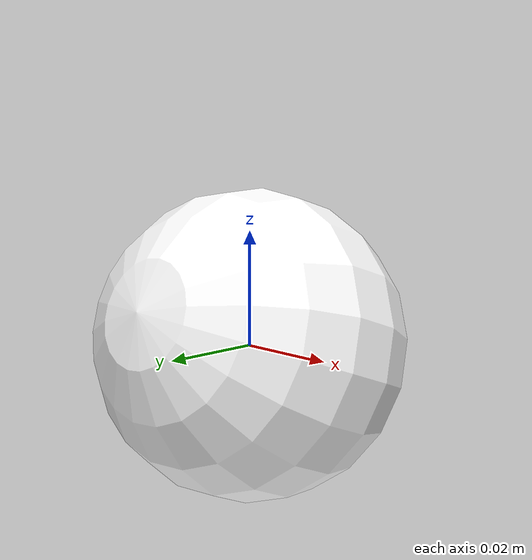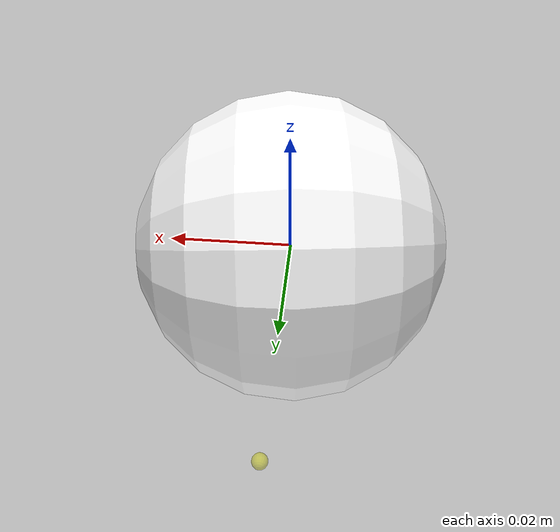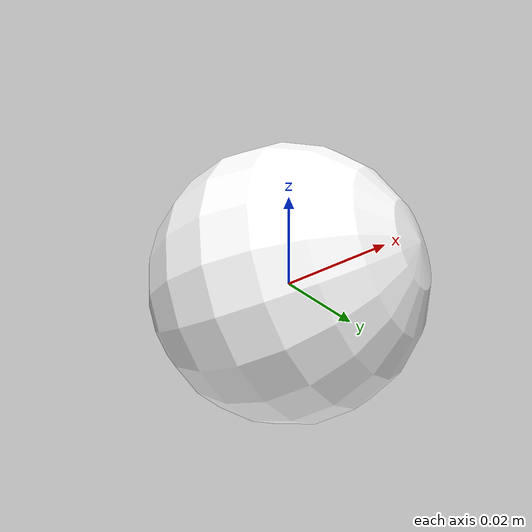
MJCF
<?xml version="1.0"?>
<mujoco>
    <compiler angle="radian"/>
    <option collision="all" timestep="0.002"/>
    <size njmax="1000" nconmax="400"/>
    <default class="main">
        <default class="eye">
            <position ctrllimited="true" kp="5"/>
            <joint type="hinge" stiffness="0.0" damping="0.5" armature="0.0" limited="true"/>
        </default>
        <default class="grid">
            <geom type="box" size="0.0025 0.0001 0.0025" rgba="0.5 0.5 0.5 0"/>
        </default>
    </default>
    <asset>
        <texture type="skybox" builtin="gradient" rgb1="1 1 1" rgb2="0.6 0.8 1" width="256" height="256"/>
        <texture type="cube" name="blue-eye" file="assets/blue_eye_texture_circle.png" gridsize="3 4" gridlayout=".U..LFRB.D.."/>
        <material name="blue-eye" texture="blue-eye" texuniform="true"/>
        <mesh name="eye" file="assets/basic_eye_2.stl" scale="0.05 0.05 0.05"/>
    </asset>
    <worldbody>
        <light name="scene_directional_light" directional="true" castshadow="false" cutoff="4" exponent="20"
               diffuse="1 1 1" specular="0 0 0" pos=".9 .3 2.5"/>

        <camera name="env" pos="-0.1 -0.05 0.05" euler="1.0 -0.85 -0.37"/>

        <body name="eye" pos="0 0 0" quat="0.7071068 0.7071068 0 0">
            <geom name="eye" type="sphere" size="0.025" material="blue-eye" rgba="1 1 1 1" quat="0.6625191 0.0130711 0.7488417 0.0115643"/>
            <camera name="eye" fovy="90"/>
            <joint name="eye-joint-x" class="eye" axis="1 0 0" range="-0.5 0.5"/>
            <joint name="eye-joint-y" class="eye" axis="0 1 0" range="-0.5 0.5"/>
            <site name="rangefinder-site" quat="0 0 1 0"/>

            <geom name="fixate-point" pos="0 0 -0.04" type="sphere" size="0.001" rgba="0.8 0.8 0 0.5"/>
        </body>

        <body name="smart-glass-pane" pos="0 0.05 0">
            <geom name="grid-0" pos="-0.015 0 0.015" class="grid"/>
            <geom name="grid-1" pos="-0.005 0 0.015" class="grid"/>
            <geom name="grid-2" pos="0.005 0 0.015" class="grid"/>
            <geom name="grid-3" pos="0.015 0 0.015" class="grid"/>

            <geom name="grid-4" pos="-0.015 0 0.005" class="grid"/>
            <geom name="grid-5" pos="-0.005 0 0.005" class="grid"/>
            <geom name="grid-6" pos="0.005 0 0.005" class="grid"/>
            <geom name="grid-7" pos="0.015 0 0.005" class="grid"/>

            <geom name="grid-8" pos="-0.015 0 -0.005" class="grid"/>
            <geom name="grid-9" pos="-0.005 0 -0.005" class="grid"/>
            <geom name="grid-10" pos="0.005 0 -0.005" class="grid"/>
            <geom name="grid-11" pos="0.015 0 -0.005" class="grid"/>

            <geom name="grid-12" pos="-0.015 0 -0.015" class="grid"/>
            <geom name="grid-13" pos="-0.005 0 -0.015" class="grid"/>
            <geom name="grid-14" pos="0.005 0 -0.015" class="grid"/>
            <geom name="grid-15" pos="0.015 0 -0.015" class="grid"/>
        </body>

    </worldbody>
    <actuator>
        <position name="eye-x-motor" joint="eye-joint-x" class="eye" ctrlrange="-0.5 0.5"/>
        <position name="eye-y-motor" joint="eye-joint-y" class="eye" ctrlrange="-0.5 0.5"/>
    </actuator>
    <sensor>
        <rangefinder name="rangefinder" site="rangefinder-site"/>
    </sensor>
</mujoco>
